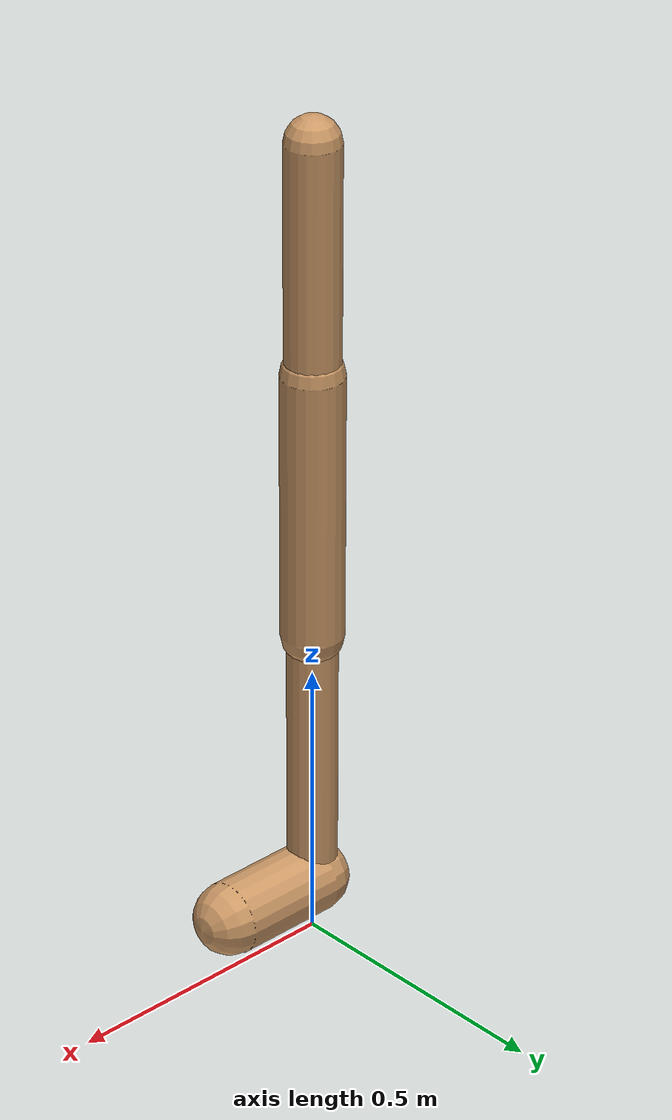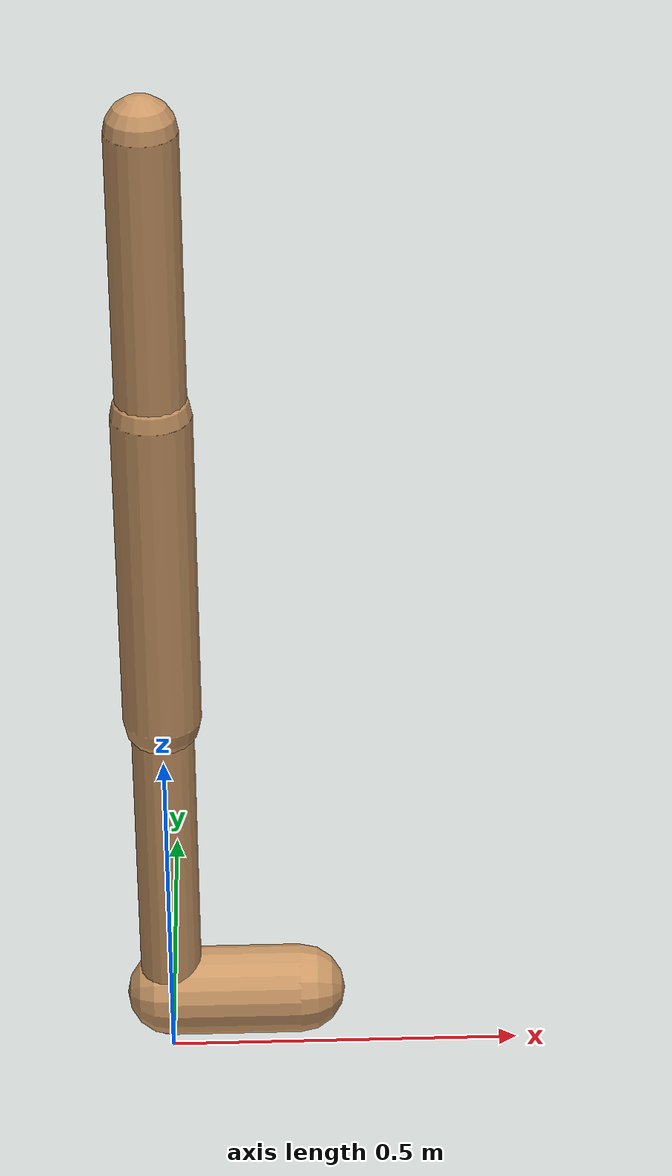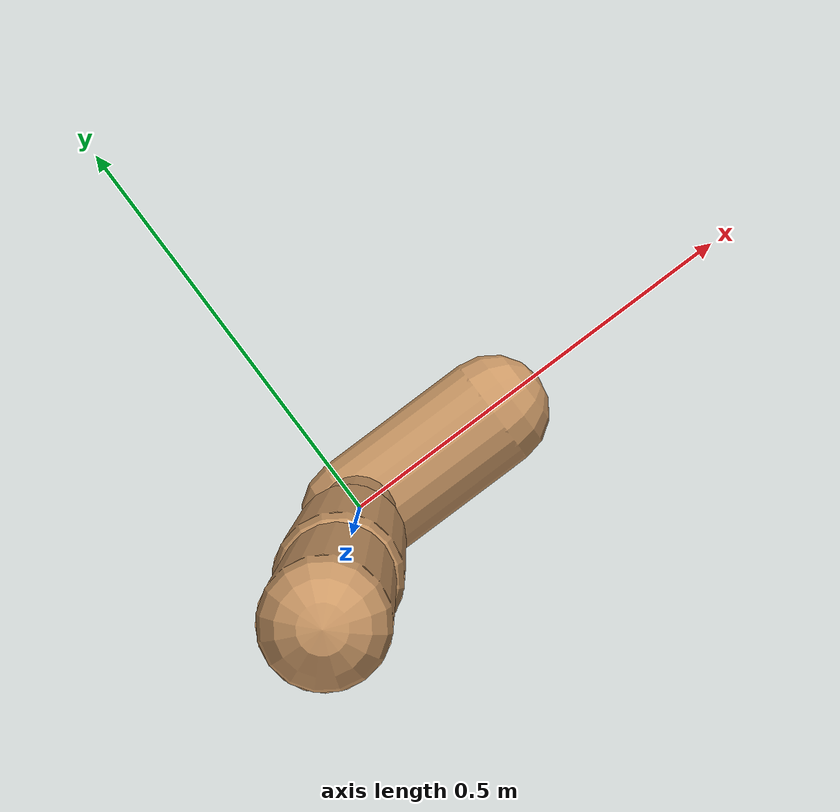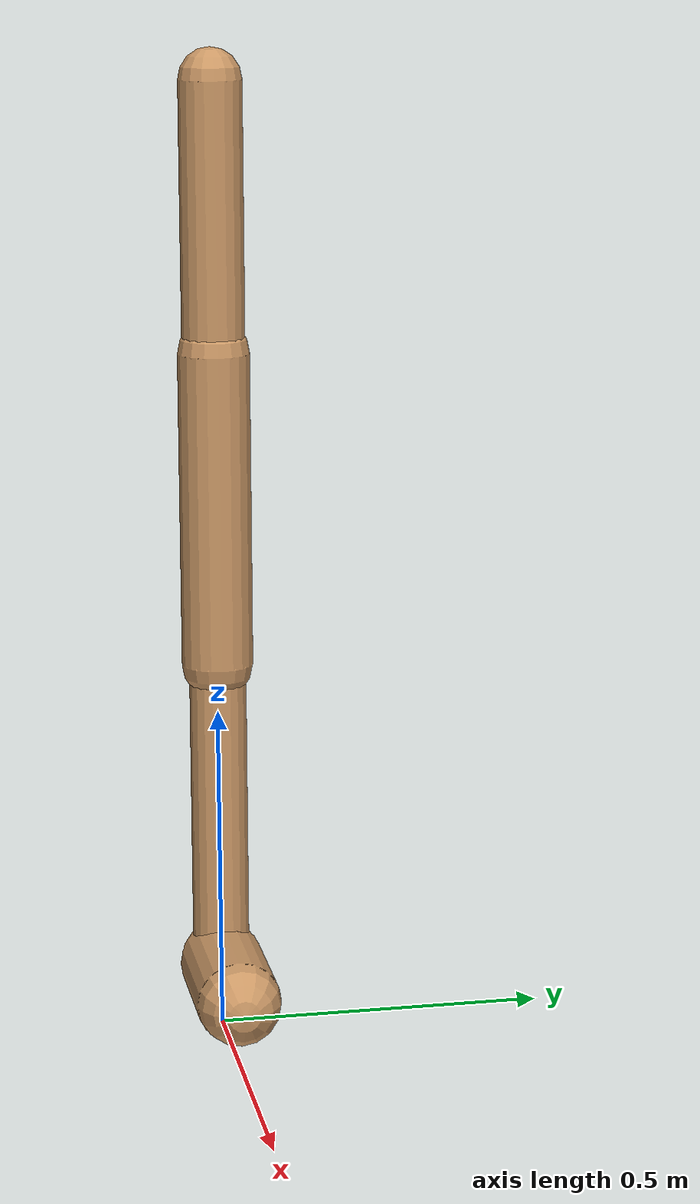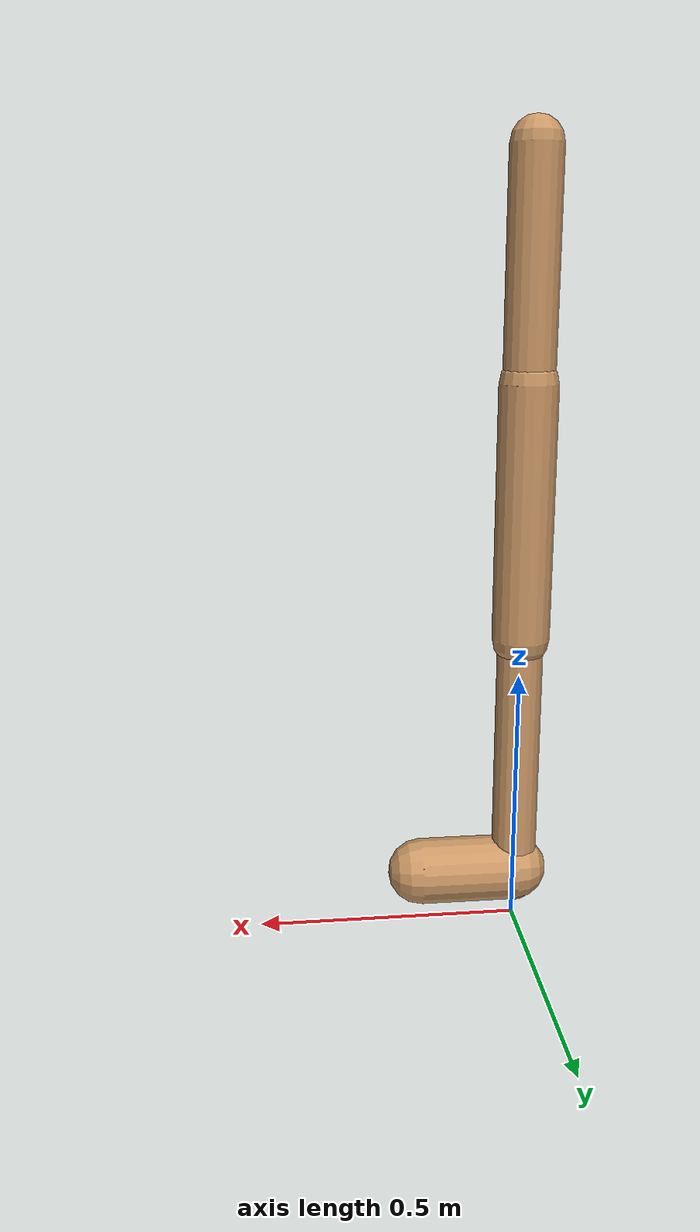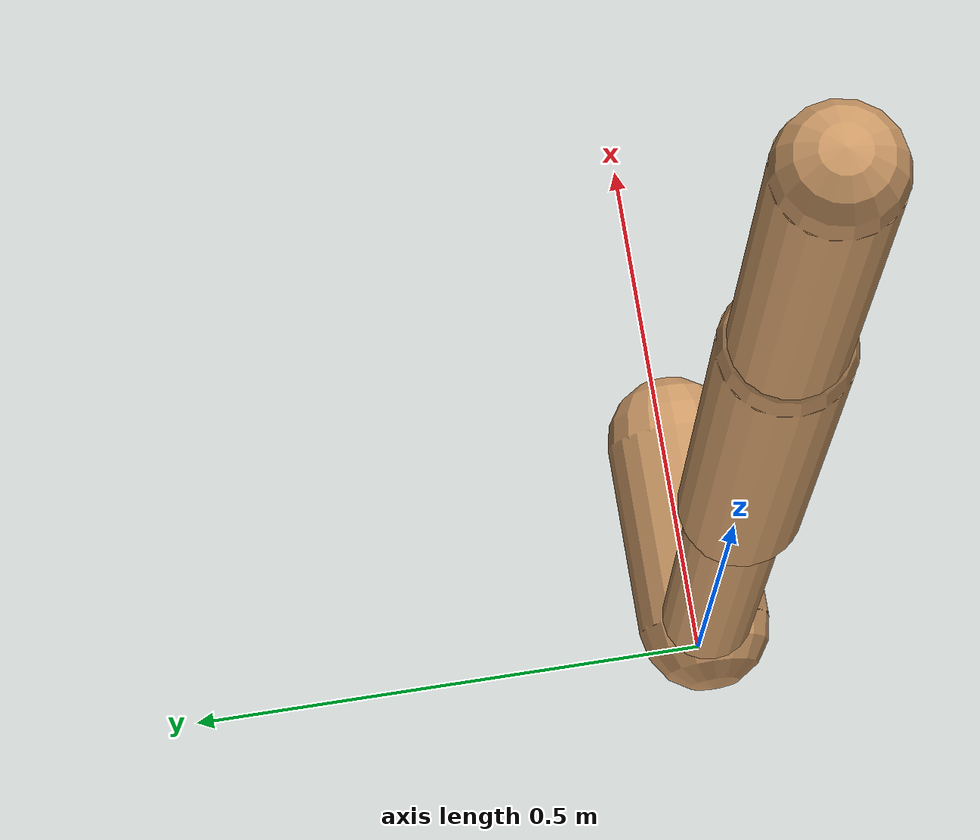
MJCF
<mujoco model="walker2d">
  <compiler angle="degree" coordinate="global" inertiafromgeom="true" />
  <default>
    <joint armature="0.01" damping=".1" limited="true" />
    <geom conaffinity="0" condim="3" contype="1" density="1000" friction="0.8 .1 .1" rgba="0.8 0.6 .4 1" />
  </default>
  <option integrator="RK4" timestep="0.002" />
  <worldbody>

    <body name="torso" pos="0 0 0.049653463069632135">
      <joint armature="0" axis="1 0 0" damping="0" limited="false" name="ignorex" pos="0 0 0" stiffness="0" type="slide" />
      <joint armature="0" axis="0 0 1" damping="0" limited="false" name="ignorez" pos="0 0 0" ref="1.25" stiffness="0" type="slide" />
      <joint armature="0" axis="0 1 0" damping="0" limited="false" name="ignorey" pos="0 0 0" stiffness="0" type="hinge" />
      <geom fromto="0 0 1.45 0 0 1.05" name="torso_geom" size="0.047260106912513915" type="capsule" />
      <body name="thigh">
        <joint axis="0 -1 0" name="thigh_joint" pos="0 0 1.05" range="-150 0" type="hinge" />
        <geom fromto="0.0 0.0 1.05 0.0 0.0 0.5764799385459637" name="thigh_geom" size="0.05392265987980604" type="capsule" />
        <body name="leg" pos="0.0 0.0 -0.02352006145403629">
          <joint axis="0 -1 0" name="leg_joint" pos="0 0 0.6" range="-150 0" type="hinge" />
          <geom fromto="0.0 0.0 0.6 0.0 0.0 0.07386659838440415" name="leg_geom" size="0.04313812790384483" type="capsule" />
          <body name="foot" pos="0.0 0.0 -0.026133401615595853">
            <joint axis="0 -1 0" name="foot_joint" pos="0 0 0.1" range="-45 45" type="hinge" />
            <geom fromto="0.0 0.0 0.1 0.1857448877426688 0.0 0.1" name="foot_geom" size="0.06325231475516782" type="capsule" />
          </body>
        </body>
      </body>

      <body name="thigh_left">
        <joint axis="0 -1 0" name="thigh_left_joint" pos="0 0 1.05" range="-150 0" type="hinge" />
        <geom fromto="0.0 0.0 1.05 0.0 0.0 0.5764799385459637" name="thigh_left_geom" rgba=".7 .3 .6 1" size="0.05392265987980604" type="capsule" />
        <body name="leg_left" pos="0.0 0.0 -0.02352006145403629">
          <joint axis="0 -1 0" name="leg_left_joint" pos="0 0 0.6" range="-150 0" type="hinge" />
          <geom fromto="0.0 0.0 0.6 0.0 0.0 0.07386659838440415" name="leg_left_geom" rgba=".7 .3 .6 1" size="0.04313812790384483" type="capsule" />
          <body name="foot_left" pos="0.0 0.0 -0.026133401615595853">
            <joint axis="0 -1 0" name="foot_left_joint" pos="0 0 0.1" range="-45 45" type="hinge" />
            <geom fromto="0.0 0.0 0.1 0.1857448877426688 0.0 0.1" name="foot_left_geom" rgba=".7 .3 .6 1" size="0.06325231475516782" type="capsule" />
          </body>
        </body>
      </body>
    </body>
  </worldbody>
  <actuator>

    <motor ctrllimited="true" ctrlrange="-1.0 1.0" gear="100" joint="thigh_joint" />
    <motor ctrllimited="true" ctrlrange="-1.0 1.0" gear="100" joint="leg_joint" />
    <motor ctrllimited="true" ctrlrange="-1.0 1.0" gear="100" joint="foot_joint" />
    <motor ctrllimited="true" ctrlrange="-1.0 1.0" gear="100" joint="thigh_left_joint" />
    <motor ctrllimited="true" ctrlrange="-1.0 1.0" gear="100" joint="leg_left_joint" />
    <motor ctrllimited="true" ctrlrange="-1.0 1.0" gear="100" joint="foot_left_joint" />

  </actuator>
</mujoco>
